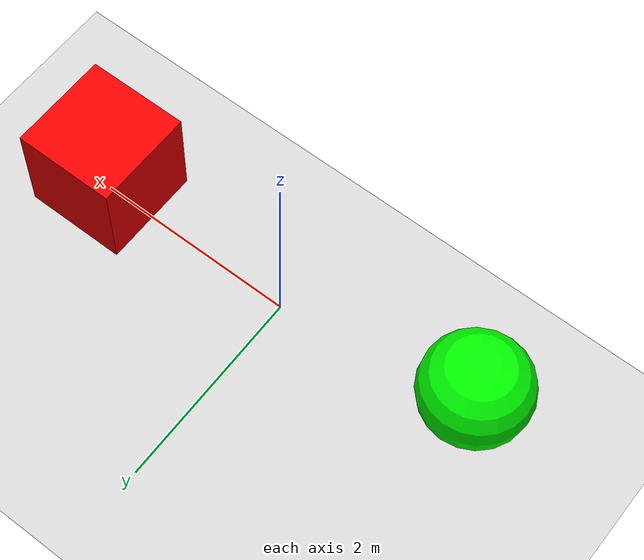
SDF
<?xml version="1.0" ?>
<sdf version="1.7">
  <world name="basic_environment">
    <!-- Include a ground plane -->
    <include>
      <uri>model://ground_plane</uri>
    </include>

    <!-- Include the sun -->
    <include>
      <uri>model://sun</uri>
    </include>

    <!-- Add a basic box obstacle -->
    <model name="box_obstacle">
      <pose>2 0 0.5 0 0 0</pose>
      <link name="link">
        <collision name="collision">
          <geometry>
            <box>
              <size>1 1 1</size>
            </box>
          </geometry>
        </collision>
        <visual name="visual">
          <geometry>
            <box>
              <size>1 1 1</size>
            </box>
          </geometry>
          <material>
            <ambient>0.5 0 0 1</ambient>
            <diffuse>1 0 0 1</diffuse>
            <specular>1 1 1 1</specular>
          </material>
        </visual>
        <inertial>
          <mass>1.0</mass>
          <inertia>
            <ixx>0.166667</ixx>
            <ixy>0</ixy>
            <ixz>0</ixz>
            <iyy>0.166667</iyy>
            <iyz>0</iyz>
            <izz>0.166667</izz>
          </inertia>
        </inertial>
      </link>
    </model>

    <!-- Add a basic sphere -->
    <model name="sphere_object">
      <pose>-2 0 1 0 0 0</pose>
      <link name="link">
        <collision name="collision">
          <geometry>
            <sphere>
              <radius>0.5</radius>
            </sphere>
          </geometry>
        </collision>
        <visual name="visual">
          <geometry>
            <sphere>
              <radius>0.5</radius>
            </sphere>
          </geometry>
          <material>
            <ambient>0 0.5 0 1</ambient>
            <diffuse>0 1 0 1</diffuse>
            <specular>1 1 1 1</specular>
          </material>
        </visual>
        <inertial>
          <mass>0.5</mass>
          <inertia>
            <ixx>0.05</ixx>
            <ixy>0</ixy>
            <ixz>0</ixz>
            <iyy>0.05</iyy>
            <iyz>0</iyz>
            <izz>0.05</izz>
          </inertia>
        </inertial>
      </link>
    </model>

    <!-- Physics parameters -->
    <physics type="ode">
      <gravity>0 0 -9.8</gravity>
      <max_step_size>0.001</max_step_size>
      <real_time_factor>1</real_time_factor>
      <real_time_update_rate>1000</real_time_update_rate>
    </physics>
  </world>
</sdf>
